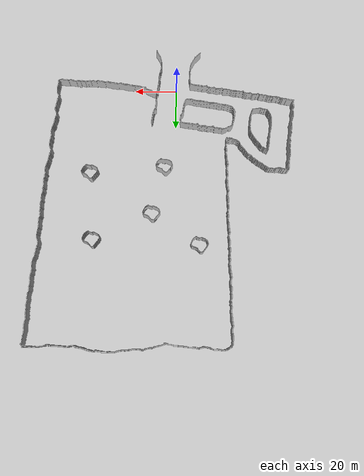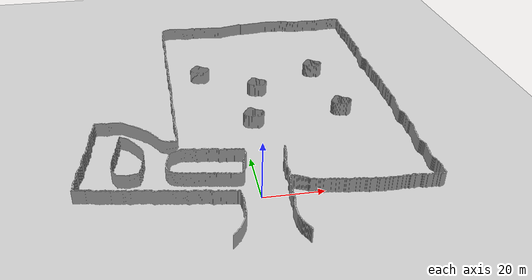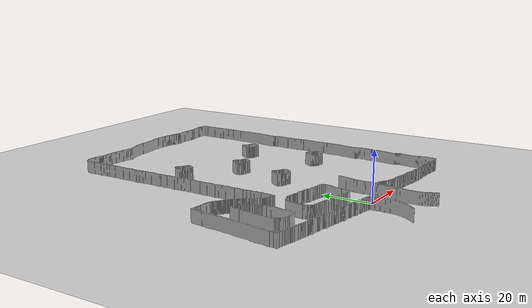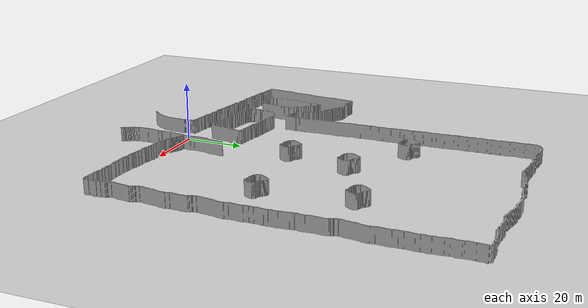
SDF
<?xml version="1.0" ?>
<sdf version="1.5">
  <world name="default">
    <!-- A global light source -->
    <include>
      <uri>model://sun</uri>
    </include>
    <!-- A ground plane -->
    <include>
      <uri>model://ground_plane</uri>
    </include>

    <!-- The lawn -->
    <include>
      <uri>model://mine_pillars_mesh</uri>
    </include>

     <physics type="ode">
      <real_time_update_rate>1000.0</real_time_update_rate>
      <max_step_size>0.001</max_step_size>
      <real_time_factor>1</real_time_factor>
      <ode>
        <solver>
          <type>quick</type>
          <iters>150</iters>
          <precon_iters>0</precon_iters>
          <sor>1.400000</sor>
          <use_dynamic_moi_rescaling>1</use_dynamic_moi_rescaling>
        </solver>
        <constraints>
          <cfm>0.00001</cfm>
          <erp>0.2</erp>
          <contact_max_correcting_vel>2000.000000</contact_max_correcting_vel>
          <contact_surface_layer>0.01000</contact_surface_layer>
        </constraints>
      </ode>
    </physics>

    <scene>
      <shadows>false</shadows>
    </scene>

  </world>
</sdf>

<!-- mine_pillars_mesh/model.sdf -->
<sdf version="1.4">
  <model name="map">
    <link name="link">
      <inertial>
        <mass>15</mass>
        <inertia>
          <ixx>0.0</ixx>
          <ixy>0.0</ixy>
          <ixz>0.0</ixz>
          <iyy>0.0</iyy>
          <iyz>0.0</iyz>
          <izz>0.0</izz>
        </inertia>
      </inertial>
      <collision name="collision">
        <pose>0 0 0 0 0 0</pose>
        <geometry>
          <mesh>
            <uri>model://mine_pillars_mesh/meshes/map.stl</uri>
          </mesh>
        </geometry>
      </collision>
      <visual name="visual">
        <pose>0 0 0 0 0 0</pose>
        <geometry>
          <mesh>
            <uri>model://mine_pillars_mesh/meshes/map.stl</uri>
          </mesh>
        </geometry>
      </visual>
    </link>
    <static>1</static>
  </model>
</sdf>
